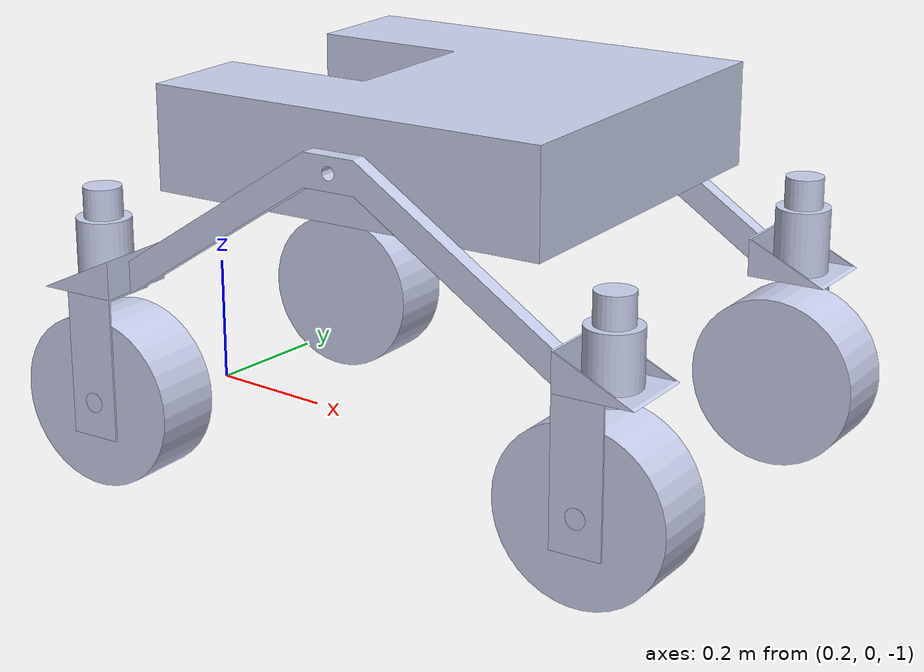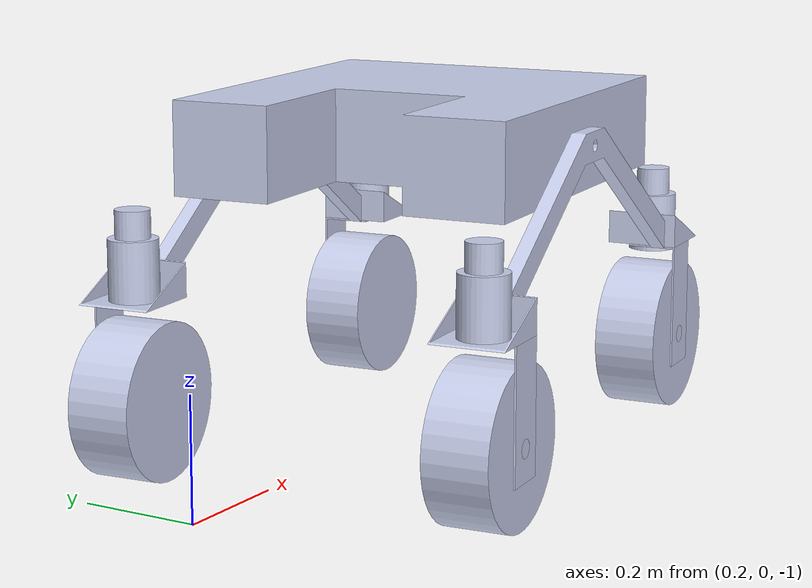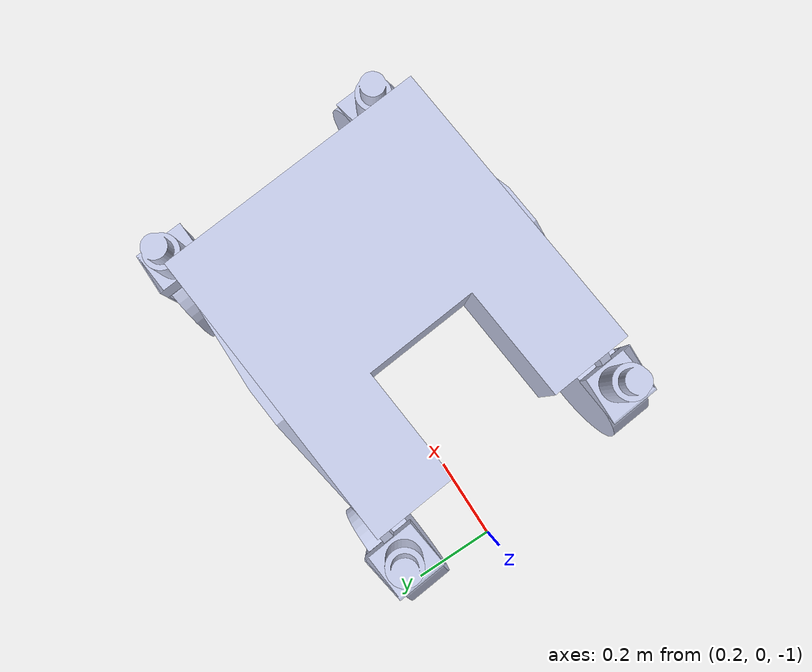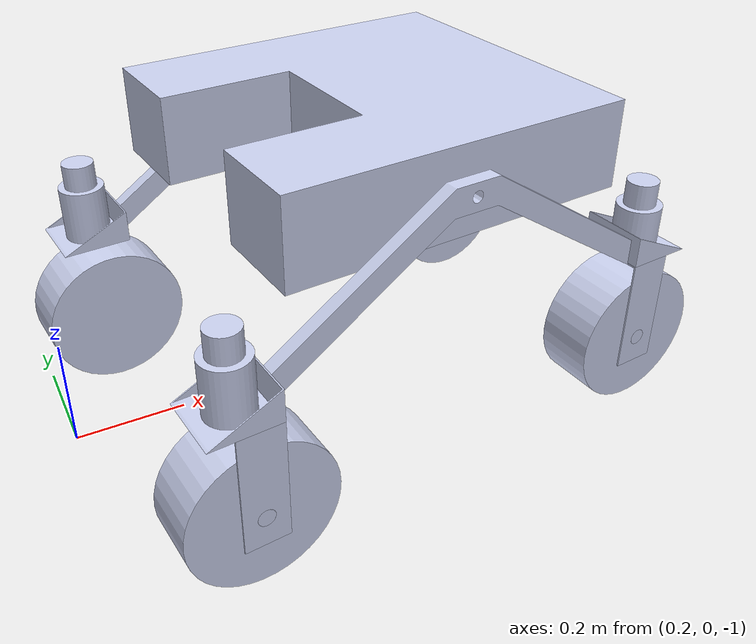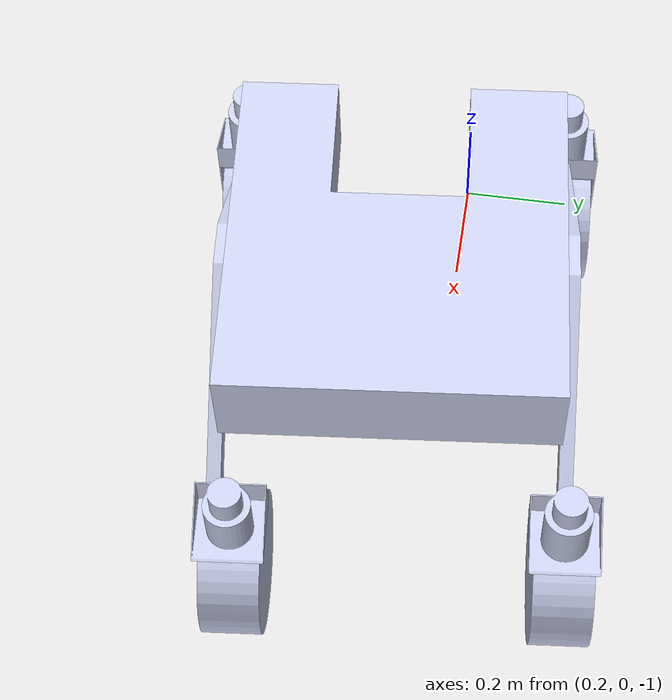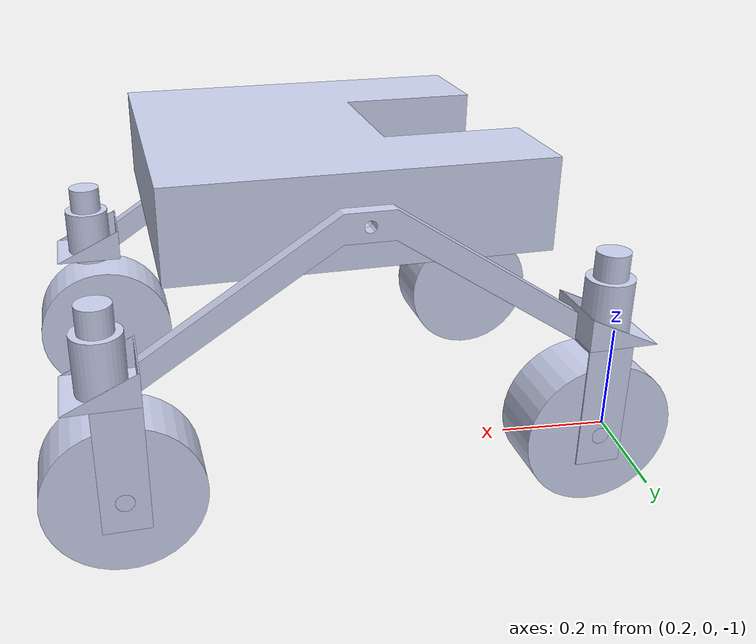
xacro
<?xml version="1.0" encoding="UTF-8"?>
<robot xmlns:xacro="http://wiki.ros.org/xacro" name="athena_drive">

  <!-- Use this if parameters are set from the launch file, otherwise delete -->
  <xacro:arg name="prefix" default=""/>

  <xacro:arg name="use_mock_hardware" default="false"/>
  <xacro:arg name="mock_sensor_commands" default="false"/>
  <xacro:arg name="sim_gazebo_classic" default="true"/>
  <xacro:arg name="sim_gazebo" default="true"/>
  <xacro:arg name="simulation_controllers" default=""/>

  <xacro:include filename="$(find description)/urdf/athena_drive/athena_drive_macro.xacro"/>
  <xacro:include filename="$(find description)/urdf/athena_drive/athena_drive_macro.ros2_control.xacro"/>

  <!-- Load robot's macro with parameters -->
  <!-- set prefix if multiple robots are used -->

  <!-- Import athena_drive macro -->
  <xacro:include filename="$(find description)/urdf/athena_drive_description.urdf.xacro"/>

  <!-- Import rmd ros2_control description -->
  <xacro:include filename="$(find description)/ros2_control/drive/drive.rmd.ros2_control.xacro" />

  <!-- Import odrive ros2_control description -->
  <xacro:include filename="$(find description)/ros2_control/drive/drive.odrive.ros2_control.xacro" />

  <!-- create link fixed to the "world" -->
  <link name="world"/>

  <xacro:description/>

  <xacro:if value="$(arg use_mock_hardware)">
    <xacro:athena_drive_ros2_control
    name="athena_drive"
    prefix="$(arg prefix)"
    use_mock_hardware="$(arg use_mock_hardware)"
    mock_sensor_commands="$(arg mock_sensor_commands)"
    sim_gazebo_classic="$(arg sim_gazebo_classic)"
    sim_gazebo="$(arg sim_gazebo)"
    simulation_controllers="$(arg simulation_controllers)"/>
  </xacro:if>
  <xacro:unless value="$(arg use_mock_hardware)">
    <xacro:rmd_ros2_control name="rmd"/>
    <xacro:odrive_ros2_control name="odrive"/>
  </xacro:unless>

</robot>

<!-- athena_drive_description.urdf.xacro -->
<robot xmlns:xacro="http://www.ros.org/wiki/xacro">
  <xacro:macro name="description">
    <link
      name="chassis_base_link">
      <inertial>
        <origin
          xyz="0.775305042176281 -0.0692748019047986 -0.475175318827691"
          rpy="0 0 0" />
        <mass
          value="44.0454429414672" />
        <inertia
          ixx="1.41725466889743"
          ixy="0.00803894609354262"
          ixz="-1.19304822311593E-17"
          iyy="1.33698338807128"
          iyz="1.62926079635059E-16"
          izz="2.58380655400253" />
      </inertial>
      <visual>
        <origin
          xyz="0 0 0"
          rpy="0 0 0" />
        <geometry>
          <mesh
            filename="package://description/meshes/chassis_base_link.STL" />
        </geometry>
        <material
          name="">
          <color
            rgba="0.792156862745098 0.819607843137255 0.933333333333333 1" />
        </material>
      </visual>
      <collision>
        <origin
          xyz="0 0 0"
          rpy="0 0 0" />
        <geometry>
          <mesh
            filename="package://description/meshes/chassis_base_link.STL" />
        </geometry>
      </collision>
    </link>
    <link
      name="suspension_left_link">
      <inertial>
        <origin
          xyz="0.099658 0.17786 0.012079"
          rpy="0 0 0" />
        <mass
          value="0.81514" />
        <inertia
          ixx="0.0036237"
          ixy="2.1053E-06"
          ixz="-1.8807E-07"
          iyy="0.034331"
          iyz="-6.6719E-08"
          izz="0.037876" />
      </inertial>
      <visual>
        <origin
          xyz="0 0 0"
          rpy="0 0 0" />
        <geometry>
          <mesh
            filename="package://description/meshes/suspension_left_link.STL" />
        </geometry>
        <material
          name="">
          <color
            rgba="0.79216 0.81961 0.93333 1" />
        </material>
      </visual>
      <collision>
        <origin
          xyz="0 0 0"
          rpy="0 0 0" />
        <geometry>
          <mesh
            filename="package://description/meshes/suspension_left_link.STL" />
        </geometry>
      </collision>
    </link>

    <!-- base_joint fixes base_link to the environment -->
    <joint name="base_joint" type="fixed">
      <parent link="world"/>
      <child link="chassis_base_link"/>
      <origin xyz="0 0 0" rpy="0 0 0"/>
      <axis xyz="0 0 1"/>
    </joint>
    <joint
      name="suspension_left_joint"
      type="revolute">
      <origin
        xyz="0.61263 0.22146 -0.74592"
        rpy="1.5708 0 0.094743" />
      <parent
        link="chassis_base_link" />
      <child
        link="suspension_left_link" />
      <axis
        xyz="0 0 -1" />
      <limit
        lower="-1.0471975512"
        upper="1.0471975512"
        effort="200"
        velocity="3" />
    </joint>
    <link
      name="swerve_front_link">
      <inertial>
        <origin
          xyz="-0.0150723908729249 -0.0104708416933169 0.0599977306724315"
          rpy="0 0 0" />
        <mass
          value="0.0539897173870708" />
        <inertia
          ixx="0.000103437060477465"
          ixy="1.625957825095E-05"
          ixz="1.84667466664483E-09"
          iyy="0.00015935267908897"
          iyz="-9.66551053737858E-10"
          izz="8.16571493320534E-05" />
      </inertial>
      <visual>
        <origin
          xyz="0 0 0"
          rpy="0 0 0" />
        <geometry>
          <mesh
            filename="package://description/meshes/swerve_front_link.STL" />
        </geometry>
        <material
          name="">
          <color
            rgba="0.792156862745098 0.819607843137255 0.933333333333333 1" />
        </material>
      </visual>
      <collision>
        <origin
          xyz="0 0 0"
          rpy="0 0 0" />
        <geometry>
          <mesh
            filename="package://description/meshes/swerve_front_link.STL" />
        </geometry>
      </collision>
    </link>
    <joint
      name="swerve_front_joint"
      type="fixed">
      <origin
        xyz="-0.30502 0.067874 0.068599"
        rpy="3.1416 0 3.1416" />
      <parent
        link="suspension_left_link" />
      <child
        link="swerve_front_link" />
      <axis
        xyz="0 0 0" />
      <limit
        lower="0"
        upper="6.2832"
        effort="200"
        velocity="200" />
    </joint>
    <link
      name="swerve_module_front_link">
      <inertial>
        <origin
          xyz="-1.4988E-15 0.041875 2.2204E-16"
          rpy="0 0 0" />
        <mass
          value="0.59412" />
        <inertia
          ixx="0.001058"
          ixy="-3.6415E-36"
          ixz="-4.3601E-37"
          iyy="0.000433"
          iyz="-2.3553E-22"
          izz="0.001058" />
      </inertial>
      <visual>
        <origin
          xyz="0 0 0"
          rpy="0 0 0" />
        <geometry>
          <mesh
            filename="package://description/meshes/swerve_module_front_link.STL" />
        </geometry>
        <material
          name="">
          <color
            rgba="0.79216 0.81961 0.93333 1" />
        </material>
      </visual>
      <collision>
        <origin
          xyz="0 0 0"
          rpy="0 0 0" />
        <geometry>
          <mesh
            filename="package://description/meshes/swerve_module_front_link.STL" />
        </geometry>
      </collision>
    </link>
    <joint
      name="swerve_module_front_left_joint"
      type="revolute">
      <origin
        xyz="0 0 0.059903"
        rpy="3.1416 0.094743 3.1416" />
      <parent
        link="swerve_front_link" />
      <child
        link="swerve_module_front_link" />
      <axis
        xyz="0 1 0" />
      <limit
        lower="0"
        upper="6.2832"
        effort="200"
        velocity="3" />
    </joint>
    <link
      name="bracket_front_link">
      <inertial>
        <origin
          xyz="1.66533453693773E-16 0.0313698536921512 -0.0102283967385405"
          rpy="0 0 0" />
        <mass
          value="0.064710634958827" />
        <inertia
          ixx="0.00034507967071994"
          ixy="-6.70003061278152E-19"
          ixz="2.50721752387273E-19"
          iyy="6.46019700513441E-05"
          iyz="5.56350874006337E-05"
          izz="0.000344914371141864" />
      </inertial>
      <visual>
        <origin
          xyz="0 0 0"
          rpy="0 0 0" />
        <geometry>
          <mesh
            filename="package://description/meshes/bracket_front_link.STL" />
        </geometry>
        <material
          name="">
          <color
            rgba="0.792156862745098 0.819607843137255 0.933333333333333 1" />
        </material>
      </visual>
      <collision>
        <origin
          xyz="0 0 0"
          rpy="0 0 0" />
        <geometry>
          <mesh
            filename="package://description/meshes/bracket_front_link.STL" />
        </geometry>
      </collision>
    </link>
    <joint
      name="bracket_front_joint"
      type="fixed">
      <origin
        xyz="0.011719658421911 -0.128534743589743 -0.0584684115770519"
        rpy="3.14159265358979 -0.0947430505373148 3.14159265358979" />
      <parent
        link="swerve_module_front_link" />
      <child
        link="bracket_front_link" />
      <axis
        xyz="0 0 0" />
    </joint>
    <link
      name="wheel_front_link">
      <inertial>
        <origin
          xyz="1.1102E-16 1.1102E-16 0.052423"
          rpy="0 0 0" />
        <mass
          value="5.2824" />
        <inertia
          ixx="0.026006"
          ixy="-2.6722E-33"
          ixz="2.4503E-17"
          iyy="0.026006"
          iyz="-2.0265E-18"
          izz="0.042334" />
      </inertial>
      <visual>
        <origin
          xyz="0 0 0"
          rpy="0 0 0" />
        <geometry>
          <mesh
            filename="package://description/meshes/wheel_front_link.STL" />
        </geometry>
        <material
          name="">
          <color
            rgba="0.79216 0.81961 0.93333 1" />
        </material>
      </visual>
      <collision>
        <origin
          xyz="0 0 0"
          rpy="0 0 0" />
        <geometry>
          <mesh
            filename="package://description/meshes/wheel_front_link.STL" />
        </geometry>
      </collision>
    </link>
    <joint
      name="wheel_front_right_joint"
      type="revolute">
      <origin
        xyz="0 -0.054545 -0.10628"
        rpy="0 0 0" />
      <parent
        link="bracket_front_link" />
      <child
        link="wheel_front_link" />
      <axis
        xyz="0 0 -1" />
      <limit
        lower="0"
        upper="6.2832"
        effort="200"
        velocity="3" />
    </joint>
    <link
      name="swerve_back_link">
      <inertial>
        <origin
          xyz="-0.0150723908729247 -0.0104708416933168 0.0599977306724315"
          rpy="0 0 0" />
        <mass
          value="0.0539897173870708" />
        <inertia
          ixx="0.000103437060477465"
          ixy="1.62595782509495E-05"
          ixz="1.84667466674139E-09"
          iyy="0.00015935267908897"
          iyz="-9.66551053681107E-10"
          izz="8.16571493320531E-05" />
      </inertial>
      <visual>
        <origin
          xyz="0 0 0"
          rpy="0 0 0" />
        <geometry>
          <mesh
            filename="package://description/meshes/swerve_back_link.STL" />
        </geometry>
        <material
          name="">
          <color
            rgba="0.792156862745098 0.819607843137255 0.933333333333333 1" />
        </material>
      </visual>
      <collision>
        <origin
          xyz="0 0 0"
          rpy="0 0 0" />
        <geometry>
          <mesh
            filename="package://description/meshes/swerve_back_link.STL" />
        </geometry>
      </collision>
    </link>
    <joint
      name="swerve_back_joint"
      type="fixed">
      <origin
        xyz="0.504296500310465 0.0678739512598524 -0.0501174912181417"
        rpy="0 0 0" />
      <parent
        link="suspension_left_link" />
      <child
        link="swerve_back_link" />
      <axis
        xyz="0 0 0" />
      <limit
        lower="0"
        upper="6.2832"
        effort="200"
        velocity="3" />
    </joint>
    <link
      name="swerve_module_back_link">
      <inertial>
        <origin
          xyz="-1.77635683940025E-15 0.041284522440529 5.55111512312578E-17"
          rpy="0 0 0" />
        <mass
          value="0.594116259168925" />
        <inertia
          ixx="0.00105797692257102"
          ixy="-3.64147406082381E-36"
          ixz="-4.36007404616681E-37"
          iyy="0.000432995205522757"
          iyz="-2.35526941660528E-22"
          izz="0.00105797692257102" />
      </inertial>
      <visual>
        <origin
          xyz="0 0 0"
          rpy="0 0 0" />
        <geometry>
          <mesh
            filename="package://description/meshes/swerve_module_back_link.STL" />
        </geometry>
        <material
          name="">
          <color
            rgba="0.792156862745098 0.819607843137255 0.933333333333333 1" />
        </material>
      </visual>
      <collision>
        <origin
          xyz="0 0 0"
          rpy="0 0 0" />
        <geometry>
          <mesh
            filename="package://description/meshes/swerve_module_back_link.STL" />
        </geometry>
      </collision>
    </link>
    <joint
      name="swerve_module_back_joint"
      type="revolute">
      <origin
        xyz="0 0 0.059903"
        rpy="0 -0.094743 0" />
      <parent
        link="swerve_back_link" />
      <child
        link="swerve_module_back_link" />
      <axis
        xyz="0 1 0" />
      <limit
        lower="0"
        upper="6.2832"
        effort="200"
        velocity="3" />
    </joint>
    <link
      name="bracket_back_link">
      <inertial>
        <origin
          xyz="6.66133814775094E-16 0.0313698536921517 -0.0102283967385408"
          rpy="0 0 0" />
        <mass
          value="0.0647106349588276" />
        <inertia
          ixx="0.000345079670719942"
          ixy="-6.06475590234079E-19"
          ixz="3.48977574268772E-19"
          iyy="6.46019700513454E-05"
          iyz="5.56350874006345E-05"
          izz="0.000344914371141866" />
      </inertial>
      <visual>
        <origin
          xyz="0 0 0"
          rpy="0 0 0" />
        <geometry>
          <mesh
            filename="package://description/meshes/bracket_back_link.STL" />
        </geometry>
        <material
          name="">
          <color
            rgba="0.792156862745098 0.819607843137255 0.933333333333333 1" />
        </material>
      </visual>
      <collision>
        <origin
          xyz="0 0 0"
          rpy="0 0 0" />
        <geometry>
          <mesh
            filename="package://description/meshes/bracket_back_link.STL" />
        </geometry>
      </collision>
    </link>
    <joint
      name="bracknet_back_joint"
      type="fixed">
      <origin
        xyz="-0.0225042151326937 -0.128534743589744 -0.0550203250295024"
        rpy="3.14159265358979 -0.0947430505373176 3.14159265358979" />
      <parent
        link="swerve_module_back_link" />
      <child
        link="bracket_back_link" />
      <axis
        xyz="0 0 0" />
    </joint>
    <link
      name="wheel_back_link">
      <inertial>
        <origin
          xyz="-2.22044604925031E-16 0 0.0524229021236682"
          rpy="0 0 0" />
        <mass
          value="5.28240462917053" />
        <inertia
          ixx="0.0260062962734837"
          ixy="1.37222508537591E-33"
          ixz="-1.38777878078145E-17"
          iyy="0.0260062962734837"
          iyz="-2.17210678633931E-18"
          izz="0.0423336338959454" />
      </inertial>
      <visual>
        <origin
          xyz="0 0 0"
          rpy="0 0 0" />
        <geometry>
          <mesh
            filename="package://description/meshes/wheel_back_link.STL" />
        </geometry>
        <material
          name="">
          <color
            rgba="0.792156862745098 0.819607843137255 0.933333333333333 1" />
        </material>
      </visual>
      <collision>
        <origin
          xyz="0 0 0"
          rpy="0 0 0" />
        <geometry>
          <mesh
            filename="package://description/meshes/wheel_back_link.STL" />
        </geometry>
      </collision>
    </link>
    <joint
      name="wheel_back_right_joint"
      type="revolute">
      <origin
        xyz="0 -0.054545 -0.10628"
        rpy="0 0 0" />
      <parent
        link="bracket_back_link" />
      <child
        link="wheel_back_link" />
      <axis
        xyz="0 0 -1" />
      <limit
        lower="0"
        upper="6.2832"
        effort="200"
        velocity="3" />
    </joint>
    <link
      name="suspension_right_link">
      <inertial>
        <origin
          xyz="0.0996575069633246 0.177857108210349 0.0120793884653498"
          rpy="0 0 0" />
        <mass
          value="0.815137674139981" />
        <inertia
          ixx="0.00362369286611303"
          ixy="2.10533763884314E-06"
          ixz="-1.88068045019413E-07"
          iyy="0.0343314249178962"
          iyz="-6.67186692298955E-08"
          izz="0.0378758255771416" />
      </inertial>
      <visual>
        <origin
          xyz="0 0 0"
          rpy="0 0 0" />
        <geometry>
          <mesh
            filename="package://description/meshes/suspension_right_link.STL" />
        </geometry>
        <material
          name="">
          <color
            rgba="0.792156862745098 0.819607843137255 0.933333333333333 1" />
        </material>
      </visual>
      <collision>
        <origin
          xyz="0 0 0"
          rpy="0 0 0" />
        <geometry>
          <mesh
            filename="package://description/meshes/suspension_right_link.STL" />
        </geometry>
      </collision>
    </link>
    <joint
      name="suspension_right_joint"
      type="revolute">
      <origin
        xyz="0.66803 -0.36146 -0.74592"
        rpy="1.5708 0 0.094743" />
      <parent
        link="chassis_base_link" />
      <child
        link="suspension_right_link" />
      <axis
        xyz="0 0 1" />
      <limit
        lower="-1.0471975512"
        upper="1.0471975512"
        effort="200"
        velocity="3" />
    </joint>
    <link
      name="swerve_front2_link">
      <inertial>
        <origin
          xyz="-0.0150723908729249 -0.0104708416933168 0.0599977306724314"
          rpy="0 0 0" />
        <mass
          value="0.0539897173870708" />
        <inertia
          ixx="0.000103437060477465"
          ixy="1.62595782509499E-05"
          ixz="1.84667466676849E-09"
          iyy="0.000159352679088971"
          iyz="-9.6655105368746E-10"
          izz="8.16571493320532E-05" />
      </inertial>
      <visual>
        <origin
          xyz="0 0 0"
          rpy="0 0 0" />
        <geometry>
          <mesh
            filename="package://description/meshes/swerve_front2_link.STL" />
        </geometry>
        <material
          name="">
          <color
            rgba="0.792156862745098 0.819607843137255 0.933333333333333 1" />
        </material>
      </visual>
      <collision>
        <origin
          xyz="0 0 0"
          rpy="0 0 0" />
        <geometry>
          <mesh
            filename="package://description/meshes/swerve_front2_link.STL" />
        </geometry>
      </collision>
    </link>
    <joint
      name="swerve_front2_joint"
      type="fixed">
      <origin
        xyz="-0.305020080886116 0.067873951259852 0.0699964894217279"
        rpy="3.14159265358979 0 3.14159265358979" />
      <parent
        link="suspension_right_link" />
      <child
        link="swerve_front2_link" />
      <axis
        xyz="0 0 0" />
      <limit
        lower="0"
        upper="6.2832"
        effort="200"
        velocity="3" />
    </joint>
    <link
      name="swerve_module_front2_link">
      <inertial>
        <origin
          xyz="0 0.0418748096067312 -5.55111512312578E-17"
          rpy="0 0 0" />
        <mass
          value="0.594116259168925" />
        <inertia
          ixx="0.00105797692257102"
          ixy="-3.64147406082381E-36"
          ixz="-4.36007404616684E-37"
          iyy="0.000432995205522757"
          iyz="4.85683513723234E-21"
          izz="0.00105797692257102" />
      </inertial>
      <visual>
        <origin
          xyz="0 0 0"
          rpy="0 0 0" />
        <geometry>
          <mesh
            filename="package://description/meshes/swerve_module_front2_link.STL" />
        </geometry>
        <material
          name="">
          <color
            rgba="0.792156862745098 0.819607843137255 0.933333333333333 1" />
        </material>
      </visual>
      <collision>
        <origin
          xyz="0 0 0"
          rpy="0 0 0" />
        <geometry>
          <mesh
            filename="package://description/meshes/swerve_module_front2_link.STL" />
        </geometry>
      </collision>
    </link>
    <joint
      name="swerve_module_front_right_joint"
      type="revolute">
      <origin
        xyz="0 0 0.059903"
        rpy="3.1416 0.094743 3.1416" />
      <parent
        link="swerve_front2_link" />
      <child
        link="swerve_module_front2_link" />
      <axis
        xyz="0 1 0" />
      <limit
        lower="0"
        upper="6.2832"
        effort="200"
        velocity="3" />
    </joint>
    <link
      name="bracket_front2_link">
      <inertial>
        <origin
          xyz="5.55111512312578E-17 0.0313698536921507 -0.0102283967385403"
          rpy="0 0 0" />
        <mass
          value="0.064710634958826" />
        <inertia
          ixx="0.000345079670719936"
          ixy="-3.54906804899552E-19"
          ixz="-8.80914265144472E-20"
          iyy="6.46019700513424E-05"
          iyz="5.56350874006328E-05"
          izz="0.00034491437114186" />
      </inertial>
      <visual>
        <origin
          xyz="0 0 0"
          rpy="0 0 0" />
        <geometry>
          <mesh
            filename="package://description/meshes/bracket_front2_link.STL" />
        </geometry>
        <material
          name="">
          <color
            rgba="0.792156862745098 0.819607843137255 0.933333333333333 1" />
        </material>
      </visual>
      <collision>
        <origin
          xyz="0 0 0"
          rpy="0 0 0" />
        <geometry>
          <mesh
            filename="package://description/meshes/bracket_front2_link.STL" />
        </geometry>
      </collision>
    </link>
    <joint
      name="bracket_front2_joint"
      type="fixed">
      <origin
        xyz="0.0225042151326936 -0.128534743589743 0.0550203250295025"
        rpy="0 0.0947430505373176 0" />
      <parent
        link="swerve_module_front2_link" />
      <child
        link="bracket_front2_link" />
      <axis
        xyz="0 0 0" />
    </joint>
    <link
      name="wheel_front2_link">
      <inertial>
        <origin
          xyz="5.55111512312578E-17 0 0.0524229021236682"
          rpy="0 0 0" />
        <mass
          value="5.28240462917053" />
        <inertia
          ixx="0.0260062962734837"
          ixy="5.89592313107887E-37"
          ixz="-1.64798730217797E-17"
          iyy="0.0260062962734837"
          iyz="-6.82271406850158E-35"
          izz="0.0423336338959454" />
      </inertial>
      <visual>
        <origin
          xyz="0 0 0"
          rpy="0 0 0" />
        <geometry>
          <mesh
            filename="package://description/meshes/wheel_front2_link.STL" />
        </geometry>
        <material
          name="">
          <color
            rgba="0.792156862745098 0.819607843137255 0.933333333333333 1" />
        </material>
      </visual>
      <collision>
        <origin
          xyz="0 0 0"
          rpy="0 0 0" />
        <geometry>
          <mesh
            filename="package://description/meshes/wheel_front2_link.STL" />
        </geometry>
      </collision>
    </link>
    <joint
      name="wheel_front_left_joint"
      type="revolute">
      <origin
        xyz="0 -0.054545 -0.10628"
        rpy="0 0 0" />
      <parent
        link="bracket_front2_link" />
      <child
        link="wheel_front2_link" />
      <axis
        xyz="0 0 -1" />
      <limit
        lower="0"
        upper="6.2832"
        effort="200"
        velocity="3" />
    </joint>
    <link
      name="swerve_back2_link">
      <inertial>
        <origin
          xyz="-0.0150723908729247 -0.0104708416933169 0.0599977306724315"
          rpy="0 0 0" />
        <mass
          value="0.0539897173870706" />
        <inertia
          ixx="0.000103437060477465"
          ixy="1.62595782509498E-05"
          ixz="1.84667466666515E-09"
          iyy="0.00015935267908897"
          iyz="-9.66551053684284E-10"
          izz="8.16571493320531E-05" />
      </inertial>
      <visual>
        <origin
          xyz="0 0 0"
          rpy="0 0 0" />
        <geometry>
          <mesh
            filename="package://description/meshes/swerve_back2_link.STL" />
        </geometry>
        <material
          name="">
          <color
            rgba="0.792156862745098 0.819607843137255 0.933333333333333 1" />
        </material>
      </visual>
      <collision>
        <origin
          xyz="0 0 0"
          rpy="0 0 0" />
        <geometry>
          <mesh
            filename="package://description/meshes/swerve_back2_link.STL" />
        </geometry>
      </collision>
    </link>
    <joint
      name="swerve_back2_joint"
      type="fixed">
      <origin
        xyz="0.504296500310466 0.0678739512598504 -0.0774206912472414"
        rpy="0 0 0" />
      <parent
        link="suspension_right_link" />
      <child
        link="swerve_back2_link" />
      <axis
        xyz="0 0 0" />
      <limit
        lower="0"
        upper="6.2832"
        effort="200"
        velocity="3" />
    </joint>
    <link
      name="swerve_module_back2_link">
      <inertial>
        <origin
          xyz="-4.44089209850063E-16 0.0263033111280635 -5.55111512312578E-17"
          rpy="0 0 0" />
        <mass
          value="0.594116259168925" />
        <inertia
          ixx="0.00105797692257102"
          ixy="-3.64147406082381E-36"
          ixz="-4.36007404616681E-37"
          iyy="0.000432995205522757"
          iyz="-2.35526941660529E-22"
          izz="0.00105797692257102" />
      </inertial>
      <visual>
        <origin
          xyz="0 0 0"
          rpy="0 0 0" />
        <geometry>
          <mesh
            filename="package://description/meshes/swerve_module_back2_link.STL" />
        </geometry>
        <material
          name="">
          <color
            rgba="0.792156862745098 0.819607843137255 0.933333333333333 1" />
        </material>
      </visual>
      <collision>
        <origin
          xyz="0 0 0"
          rpy="0 0 0" />
        <geometry>
          <mesh
            filename="package://description/meshes/swerve_module_back2_link.STL" />
        </geometry>
      </collision>
    </link>
    <joint
      name="swerve_module_back2_joint"
      type="revolute">
      <origin
        xyz="0 0 0.0599025014000917"
        rpy="0 -0.0947430505373176 0" />
      <parent
        link="swerve_back2_link" />
      <child
        link="swerve_module_back2_link" />
      <axis
        xyz="0 1 0" />
      <limit
        lower="0"
        upper="6.28318530718"
        effort="200"
        velocity="3" />
    </joint>
    <link
      name="bracket_back2_link">
      <inertial>
        <origin
          xyz="2.22044604925031E-16 0.0313698536921514 -0.0102283967385408"
          rpy="0 0 0" />
        <mass
          value="0.0647106349588277" />
        <inertia
          ixx="0.000345079670719943"
          ixy="-6.58144600016591E-19"
          ixz="1.15196480826585E-19"
          iyy="6.46019700513455E-05"
          iyz="5.56350874006339E-05"
          izz="0.000344914371141867" />
      </inertial>
      <visual>
        <origin
          xyz="0 0 0"
          rpy="0 0 0" />
        <geometry>
          <mesh
            filename="package://description/meshes/bracket_back2_link.STL" />
        </geometry>
        <material
          name="">
          <color
            rgba="0.792156862745098 0.819607843137255 0.933333333333333 1" />
        </material>
      </visual>
      <collision>
        <origin
          xyz="0 0 0"
          rpy="0 0 0" />
        <geometry>
          <mesh
            filename="package://description/meshes/bracket_back2_link.STL" />
        </geometry>
      </collision>
    </link>
    <joint
      name="bracket_back2_joint"
      type="fixed">
      <origin
        xyz="-0.011719658421911 -0.128534743589743 0.0584684115770519"
        rpy="0 0.0947430505373176 0" />
      <parent
        link="swerve_module_back2_link" />
      <child
        link="bracket_back2_link" />
      <axis
        xyz="0 0 0" />
    </joint>
    <link
      name="wheel_back2_link">
      <inertial>
        <origin
          xyz="-2.22044604925031E-16 0 0.0524229021236682"
          rpy="0 0 0" />
        <mass
          value="5.28240462917053" />
        <inertia
          ixx="0.0260062962734837"
          ixy="2.19074531174048E-33"
          ixz="-1.45283091113058E-17"
          iyy="0.0260062962734837"
          iyz="-1.93197138040782E-18"
          izz="0.0423336338959453" />
      </inertial>
      <visual>
        <origin
          xyz="0 0 0"
          rpy="0 0 0" />
        <geometry>
          <mesh
            filename="package://description/meshes/wheel_back2_link.STL" />
        </geometry>
        <material
          name="">
          <color
            rgba="0.792156862745098 0.819607843137255 0.933333333333333 1" />
        </material>
      </visual>
      <collision>
        <origin
          xyz="0 0 0"
          rpy="0 0 0" />
        <geometry>
          <mesh
            filename="package://description/meshes/wheel_back2_link.STL" />
        </geometry>
      </collision>
    </link>
    <joint
      name="wheel_back_left_joint"
      type="revolute">
      <origin
        xyz="0 -0.054545 -0.10628"
        rpy="0 0 0" />
      <parent
        link="bracket_back2_link" />
      <child
        link="wheel_back2_link" />
      <axis
        xyz="0 0 -1" />
      <limit
        lower="0"
        upper="6.2832"
        effort="200"
        velocity="3" />
    </joint>
  </xacro:macro>
</robot>
